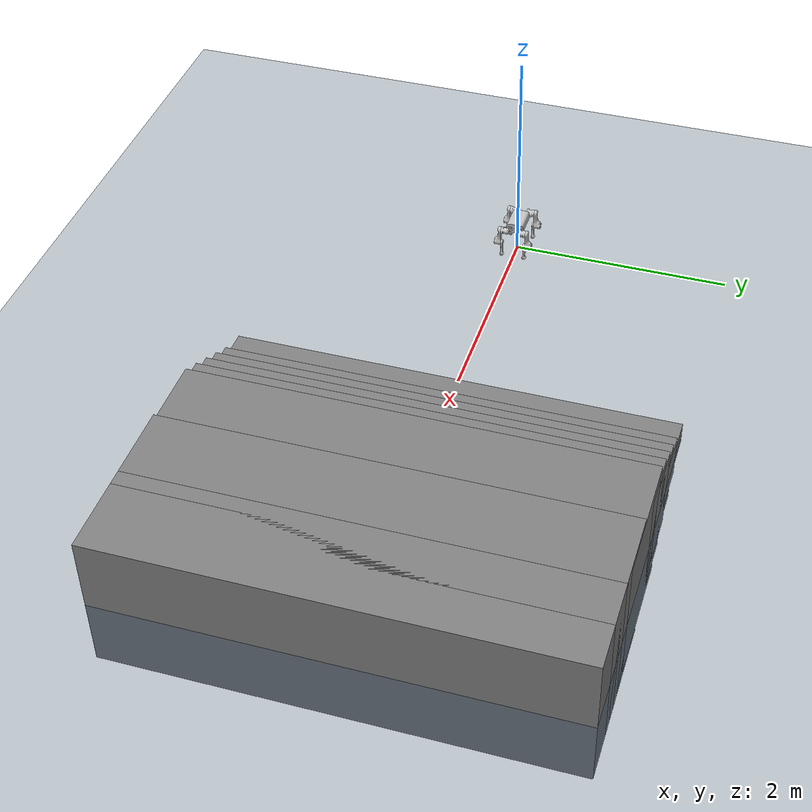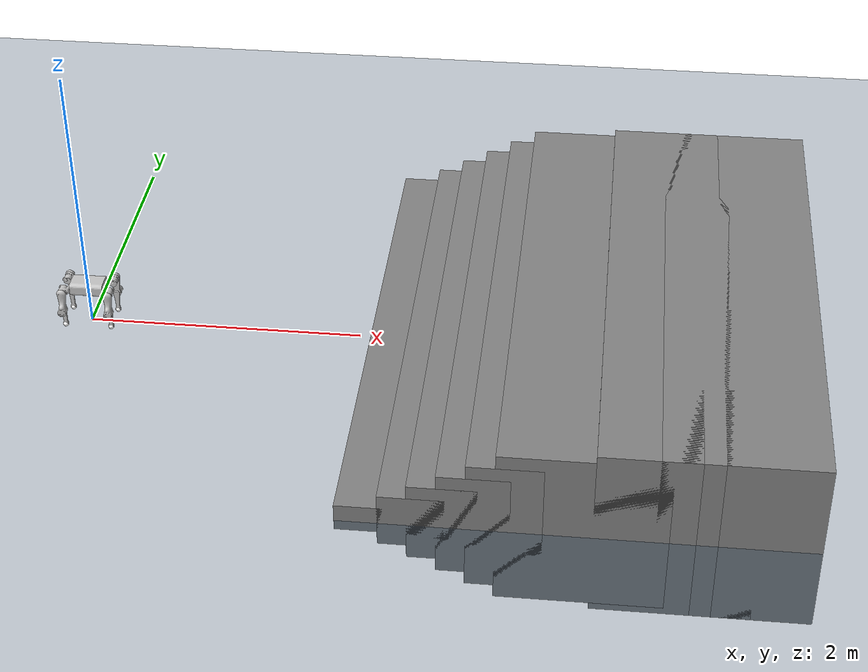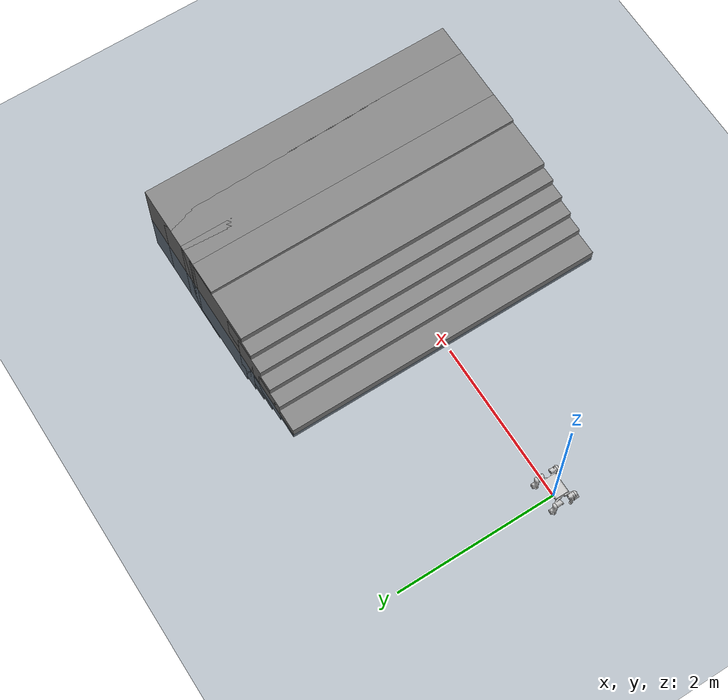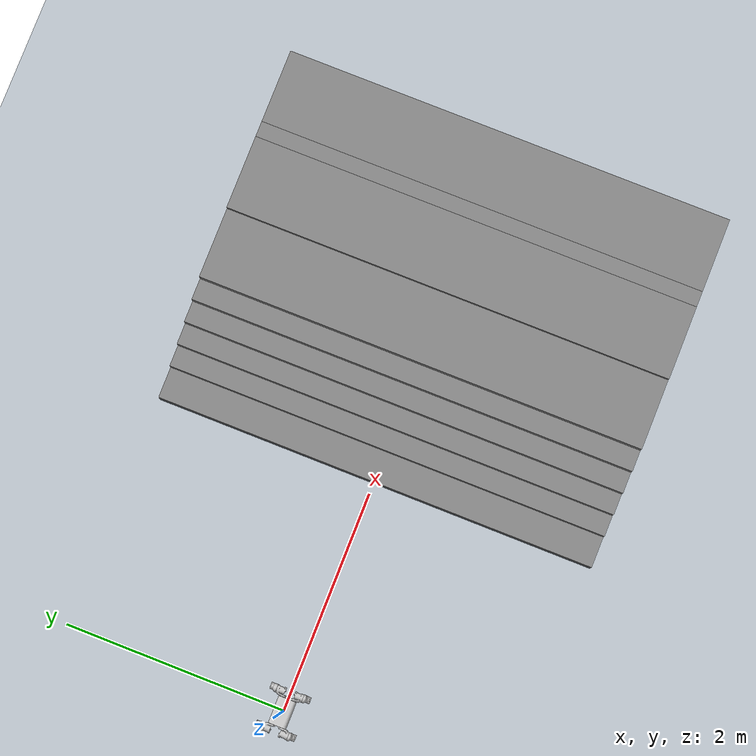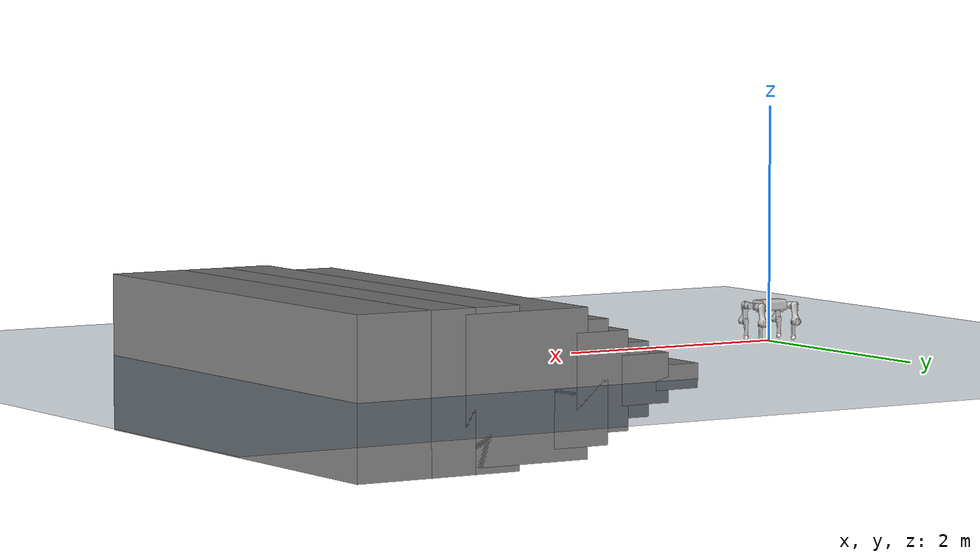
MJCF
<mujoco model="yun1 scene">
  <include file="yun1.xml"/>

  <statistic center="1.0 0.7 1.0" extent="0.8"/>

  <visual>
    <headlight diffuse="0.6 0.6 0.6" ambient="0.1 0.1 0.1" specular="0.9 0.9 0.9"/>
    <rgba haze="0.15 0.25 0.35 1"/>
    <global azimuth="-140" elevation="-20"/>
  </visual>

  <asset>
    <texture type="skybox" builtin="flat" rgb1="0 0 0" rgb2="0 0 0" width="512" height="3072"/>
    <texture type="2d" name="groundplane" builtin="checker" mark="edge" rgb1="0.2 0.3 0.4" rgb2="0.1 0.2 0.3" markrgb="0.8 0.8 0.8" width="300" height="300"/>
    <material name="groundplane" texture="groundplane" texuniform="true" texrepeat="5 5" reflectance="0.2"/>
  </asset>

  <worldbody>
    <light pos="1 0 3.5" dir="0 0 -1" directional="true"/>
    <geom name="floor" size="0 0 0.05" type="plane" material="groundplane"/>

    <geom pos="2.3 0 0.02" type="box"  size="0.2 2 0.10" quat="1.0 0 0 0"/>
    <geom pos="2.6 0 0.02" type="box"  size="0.22 2 0.2" quat="1.0 0 0 0"/>
    <geom pos="2.8 0 0.02" type="box"  size="0.23 2 0.3" quat="1.0 0 0 0"/>
    <geom pos="3 0 0.02" type="box"  size="0.24 2 0.4" quat="1.0 0 0 0"/>
    <geom pos="3.2 0 0.02" type="box"  size="0.25 2 0.5" quat="1.0 0 0 0"/>
    <geom pos="3.7 0 0.02" type="box"  size="0.56 2 0.6" quat="1.0 0 0 0"/>
    <geom pos="4.1 0 0.02" type="box"  size="0.33 2 0.65" quat="1.0 0 0 0"/>
    <geom pos="4.5 0 0.02" type="box"  size="0.33 2 0.65" quat="1.0 0 0 0"/>
    <geom pos="4.9 0 0.02" type="box"  size="0.33 2 0.65" quat="1.0 0 0 0"/>

  </worldbody>
</mujoco>

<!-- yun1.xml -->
<mujoco model="yun1">
  <compiler angle="radian" meshdir="" autolimits="true" />

  <option cone="elliptic" impratio="100" />

  <default>
    <default class="yun1">
      <geom friction="1.0 1.0" margin="0.001" solref = "0.005 1" condim="3"/>
      <joint axis="0 1 0" damping="0.1" armature="0.01" frictionloss="0.2"/>
      <motor ctrlrange="-14 14"/>
      <default class="abduction">
        <joint axis="1 0 0" range="-0.8727 0.8727"/>
      </default>
      <default class="hip">
        <default class="front_hip">
          <joint range="-2.7925 2.7925"/>
        </default>
        <default class="back_hip">
          <joint range="-2.7925 2.7925"/>
        </default>
      </default>
      <default class="knee">
        <joint range="-2.7053 2.7053"/>
      </default>
      <default class="visual">
        <geom type="mesh" contype="0" conaffinity="0" group="2"/>
      </default>
      <default class="collision">
        <geom group="3"/>
        <default class="foot">
          <geom size="0.001" pos="0 0 -0.135" priority="1" condim="6"
            friction="1.0 0.02 0.01"/>
        </default>
      </default>
    </default>
  </default>

  <asset>
    <mesh name="base_link" file="./meshes/base_link.STL" />
    <mesh name="fr_hip_Link" file="./meshes/fr_hip_Link.STL" />
    <mesh name="fr_thigh_Link" file="./meshes/fr_thigh_Link.STL" />
    <mesh name="fr_calf_Link" file="./meshes/fr_calf_Link.STL" />
    <mesh name="fl_hip_Link" file="./meshes/fl_hip_Link.STL" />
    <mesh name="fl_thigh_Link" file="./meshes/fl_thigh_Link.STL" />
    <mesh name="fl_calf_Link" file="./meshes/fl_calf_Link.STL" />
    <mesh name="rr_hip_Link" file="./meshes/rr_hip_Link.STL" />
    <mesh name="rr_thigh_Link" file="./meshes/rr_thigh_Link.STL" />
    <mesh name="rr_calf_Link" file="./meshes/rr_calf_Link.STL" />
    <mesh name="rl_hip_Link" file="./meshes/rl_hip_Link.STL" />
    <mesh name="rl_thigh_Link" file="./meshes/rl_thigh_Link.STL" />
    <mesh name="rl_calf_Link" file="./meshes/rl_calf_Link.STL" />
  </asset>

  <worldbody>
    <body name="base_link" pos="0 0 0.3" childclass="yun1">
      <inertial pos="0.00383944 0.00032322 0.00132292" quat="1 0 0 0"
        mass="2.87129405"
        diaginertia="0.00758086 0.01707296 0.02157473" />
      <freejoint />
      <geom type="mesh" mesh="base_link" rgba="0.752941176470588 0.752941176470588 0.752941176470588 1"/>
      <geom type="mesh" mesh="base_link" class="collision"/>
      <site name="imu" pos="0.0 0 -0.0" />
      <body name="fl_hip_Link" pos="0.1125 0.045 0">
        <inertial pos="0.05181106 0.02890945 -0.00025930" quat="1 0 0 0"
          mass="0.40036239"
          diaginertia="0.00027388 0.00028655 0.00034645" />
        <joint name="fl_hip_Joint" class="abduction" />
        <geom type="mesh" mesh="fl_hip_Link" rgba="0.752941176470588 0.752941176470588 0.752941176470588 1"/>
        <geom type="mesh" mesh="fl_hip_Link" class="collision"/>
        <body name="fl_thigh_Link" pos="0.0575 0.0525 0">
          <inertial pos="-0.00025469 0.04391819 -0.10445464" quat="1 0 0 0"
            mass="0.47156059"
            diaginertia="0.00157037 0.00153438 0.00030139" />
          <joint name="fl_thigh_Joint" class="front_hip" />
          <geom type="mesh" mesh="fl_thigh_Link" rgba="0.752941176470588 0.752941176470588 0.752941176470588 1"/>
          <geom type="mesh" mesh="fl_thigh_Link" class="collision"/>
          <body name="fl_calf_Link" pos="0 0.026 -0.135">
            <inertial pos="-2.5e-06 -0.01533174 -0.06951052"
              quat="1 0 0 0"
              mass="0.08358392" diaginertia="0.00024129 0.00024771 1.351e-05" />
            <joint name="fl_calf_Joint" class="knee" />
            <geom type="mesh" mesh="fl_calf_Link" rgba="0.752941176470588 0.752941176470588 0.752941176470588 1"/>
            <geom type="mesh" mesh="fl_calf_Link" class="collision"/>
            <geom type="sphere" size="0.02075" rgba="1 1 1 1" pos="0 -0.015 -0.14" />
            <geom name="fl_foot_Link" class="foot" pos="0 -0.015 -0.14" />
            <body name="fl_foot_Link" pos="0 -0.015 -0.14">
              <inertial pos="0 0 0" quat="1 0 0 0" mass="0.04" diaginertia="9.6e-06 9.6e-06 9.6e-06" />
              <geom type="sphere" size="0.02075" pos="-0.002 0 0" class="foot" />
            </body>
          </body>
        </body>
      </body>

      <body name="fr_hip_Link" pos="0.1125 -0.045 0">
        <inertial pos="0.05151195 -0.02890203 0.00025989" quat="1 0 0 0"
          mass="0.40021841"
          diaginertia="0.00027389 0.00028504 0.00034478" />
        <joint name="fr_hip_Joint" class="abduction" />
        <geom type="mesh" mesh="fr_hip_Link" rgba="0.752941176470588 0.752941176470588 0.752941176470588 1"/>
        <geom type="mesh" mesh="fr_hip_Link" class="collision"/>
        <body name="fr_thigh_Link" pos="0.0575 -0.0525 0">
          <inertial pos="0.00025469 -0.04391819 -0.10445464" quat="1 0 0 0"
            mass="0.47156059"
            diaginertia="0.00157037 0.00153438 0.00030139" />
          <joint name="fr_thigh_Joint" class="front_hip" />
          <geom type="mesh" mesh="fr_thigh_Link" rgba="0.752941176470588 0.752941176470588 0.752941176470588 1"/>
          <geom type="mesh" mesh="fr_thigh_Link" class="collision"/>
          <body name="fr_calf_Link" pos="0 -0.026 -0.135">
            <inertial pos="2.5e-06 0.01533174 -0.06951052"
              quat="1 0 0 0"
              mass="0.08358392" diaginertia="0.00024129 0.00024771 1.351e-05" />
            <joint name="fr_calf_Joint" class="knee" />
            <geom type="mesh" mesh="fr_calf_Link" rgba="0.752941176470588 0.752941176470588 0.752941176470588 1"/>
            <geom type="mesh" mesh="fr_calf_Link" class="collision"/>
            <geom type="sphere" size="0.02075" rgba="1 1 1 1" pos="0 0.015 -0.14" />
            <geom name="fr_foot_Link" class="foot" pos="0 0.015 -0.14" />
            <body name="fr_foot_Link" pos="0 0.015 -0.14">
              <inertial pos="0 0 0" quat="1 0 0 0" mass="0.04" diaginertia="9.6e-06 9.6e-06 9.6e-06" />
              <geom type="sphere" size="0.02075" pos="-0.002 0 0" class="foot" />
            </body>
          </body>
        </body>
      </body>

      <body name="rl_hip_Link" pos="-0.1125 0.045 0">
        <inertial pos="-0.05151195 0.02890203 0.00025989" quat="1 0 0 0"
          mass="0.40021841"
          diaginertia="0.00027389 0.00028504 0.00034478" />
        <joint name="rl_hip_Joint" class="abduction" />
        <geom type="mesh" mesh="rl_hip_Link" rgba="0.752941176470588 0.752941176470588 0.752941176470588 1"/>
        <geom type="mesh" mesh="rl_hip_Link" class="collision"/>
        <body name="rl_thigh_Link" pos="-0.0575 0.0525 0">
          <inertial pos="-0.00025469 0.04391819 -0.10445464" quat="1 0 0 0"
            mass="0.47156059"
            diaginertia="0.00157037 0.00153438 0.00030139" />
          <joint name="rl_thigh_Joint" class="back_hip" />
          <geom type="mesh" mesh="rl_thigh_Link" rgba="0.752941176470588 0.752941176470588 0.752941176470588 1"/>
          <geom type="mesh" mesh="rl_thigh_Link" class="collision"/>
          <body name="rl_calf_Link" pos="0 0.026 -0.135">
            <inertial pos="-2.5e-06 -0.01533174 -0.06951052"
              quat="1 0 0 0"
              mass="0.08358392" diaginertia="0.00024129 0.00024771 1.351e-05" />
            <joint name="rl_calf_Joint" class="knee" />
            <geom type="mesh" mesh="rl_calf_Link" rgba="0.752941176470588 0.752941176470588 0.752941176470588 1"/>
            <geom type="mesh" mesh="rl_calf_Link" class="collision"/>
            <geom type="sphere" size="0.02075" rgba="1 1 1 1" pos="0 -0.015 -0.14" />
            <geom name="rl_foot_Link" class="foot" pos="0 -0.015 -0.14" />
            <body name="rl_foot_Link" pos="0 -0.015 -0.14">
              <inertial pos="0 0 0" quat="1 0 0 0" mass="0.04" diaginertia="9.6e-06 9.6e-06 9.6e-06" />
              <geom type="sphere" size="0.02075" pos="-0.002 0 0" class="foot" />
            </body>
          </body>
        </body>
      </body>

      <body name="rr_hip_Link" pos="-0.1125 -0.045 0">
        <inertial pos="-0.05181106 -0.02890945 -0.0002593" quat="1 0 0 0"
          mass="0.40036239"
          diaginertia="0.00027388 0.00028655 0.00034645" />
        <joint name="rr_hip_Joint" class="abduction" />
        <geom type="mesh" mesh="rr_hip_Link" rgba="0.752941176470588 0.752941176470588 0.752941176470588 1"/>
        <geom type="mesh" mesh="rr_hip_Link" class="collision"/>
        <body name="rr_thigh_Link" pos="-0.0575 -0.0525 0">
          <inertial pos="0.00025469 -0.04391819 -0.10445464" quat="1 0 0 0"
            mass="0.47156059"
            diaginertia="0.00157037 0.00153438 0.00030139" />
          <joint name="rr_thigh_Joint" class="back_hip" />
          <geom type="mesh" mesh="rr_thigh_Link" rgba="0.752941176470588 0.752941176470588 0.752941176470588 1"/>
          <geom type="mesh" mesh="rr_thigh_Link" class="collision"/>
          <body name="rr_calf_Link" pos="0 -0.026 -0.135">
            <inertial pos="2.5e-06 0.01533174 -0.06951052"
              quat="1 0 0 0"
              mass="0.08358392" diaginertia="0.00024129 0.00024771 1.351e-05" />
            <joint name="rr_calf_Joint" class="knee" />
            <geom type="mesh" mesh="rr_calf_Link" rgba="0.752941176470588 0.752941176470588 0.752941176470588 1"/>
            <geom type="mesh" mesh="rr_calf_Link" class="collision"/>
            <geom type="sphere" size="0.02075" rgba="1 1 1 1" pos="0 0.015 -0.14" />
            <geom name="rr_foot_Link" class="foot" pos="0 0.015 -0.14" />
            <body name="rr_foot_Link" pos="0 0.015 -0.14">
              <inertial pos="0 0 0" quat="1 0 0 0" mass="0.04" diaginertia="9.6e-06 9.6e-06 9.6e-06" />
              <geom type="sphere" size="0.02075" pos="-0.002 0 0" class="foot" />
            </body>
          </body>
        </body>
      </body>
    </body>
  </worldbody>

  <actuator>
    <motor class="abduction" name="fl_hip_Joint" joint="fl_hip_Joint" />
    <motor class="hip" name="fl_thigh_Joint" joint="fl_thigh_Joint" />
    <motor class="knee" name="fl_calf_Joint" joint="fl_calf_Joint" />

    <motor class="abduction" name="fr_hip_Joint" joint="fr_hip_Joint" />
    <motor class="hip" name="fr_thigh_Joint" joint="fr_thigh_Joint" />
    <motor class="knee" name="fr_calf_Joint" joint="fr_calf_Joint" />

    <motor class="abduction" name="rl_hip_Joint" joint="rl_hip_Joint" />
    <motor class="hip" name="rl_thigh_Joint" joint="rl_thigh_Joint" />
    <motor class="knee" name="rl_calf_Joint" joint="rl_calf_Joint" />

    <motor class="abduction" name="rr_hip_Joint" joint="rr_hip_Joint" />
    <motor class="hip" name="rr_thigh_Joint" joint="rr_thigh_Joint" />
    <motor class="knee" name="rr_calf_Joint" joint="rr_calf_Joint" />
  </actuator>

  <sensor>
    <jointpos name="fl_hip_pos" joint="fl_hip_Joint" />
    <jointpos name="fl_thigh_pos" joint="fl_thigh_Joint" />
    <jointpos name="fl_calf_pos" joint="fl_calf_Joint" />

    <jointpos name="fr_hip_pos" joint="fr_hip_Joint" />
    <jointpos name="fr_thigh_pos" joint="fr_thigh_Joint" />
    <jointpos name="fr_calf_pos" joint="fr_calf_Joint" />

    <jointpos name="rl_hip_pos" joint="rl_hip_Joint" />
    <jointpos name="rl_thigh_pos" joint="rl_thigh_Joint" />
    <jointpos name="rl_calf_pos" joint="rl_calf_Joint" />

    <jointpos name="rr_hip_pos" joint="rr_hip_Joint" />
    <jointpos name="rr_thigh_pos" joint="rr_thigh_Joint" />
    <jointpos name="rr_calf_pos" joint="rr_calf_Joint" />

    <jointvel name="fl_hip_vel" joint="fl_hip_Joint" />
    <jointvel name="fl_thigh_vel" joint="fl_thigh_Joint" />
    <jointvel name="fl_calf_vel" joint="fl_calf_Joint" />

    <jointvel name="fr_hip_vel" joint="fr_hip_Joint" />
    <jointvel name="fr_thigh_vel" joint="fr_thigh_Joint" />
    <jointvel name="fr_calf_vel" joint="fr_calf_Joint" />

    <jointvel name="rl_hip_vel" joint="rl_hip_Joint" />
    <jointvel name="rl_thigh_vel" joint="rl_thigh_Joint" />
    <jointvel name="rl_calf_vel" joint="rl_calf_Joint" />

    <jointvel name="rr_hip_vel" joint="rr_hip_Joint" />
    <jointvel name="rr_thigh_vel" joint="rr_thigh_Joint" />
    <jointvel name="rr_calf_vel" joint="rr_calf_Joint" />

    <jointactuatorfrc name="fl_hip_torque" joint="fl_hip_Joint" noise="0.01" />
    <jointactuatorfrc name="fl_thigh_torque" joint="fl_thigh_Joint" noise="0.01" />
    <jointactuatorfrc name="fl_calf_torque" joint="fl_calf_Joint" noise="0.01" />

    <jointactuatorfrc name="fr_hip_torque" joint="fr_hip_Joint" noise="0.01" />
    <jointactuatorfrc name="fr_thigh_torque" joint="fr_thigh_Joint" noise="0.01" />
    <jointactuatorfrc name="fr_calf_torque" joint="fr_calf_Joint" noise="0.01" />

    <jointactuatorfrc name="rl_hip_torque" joint="rl_hip_Joint" noise="0.01" />
    <jointactuatorfrc name="rl_thigh_torque" joint="rl_thigh_Joint" noise="0.01" />
    <jointactuatorfrc name="rl_calf_torque" joint="rl_calf_Joint" noise="0.01" />

    <jointactuatorfrc name="rr_hip_torque" joint="rr_hip_Joint" noise="0.01" />
    <jointactuatorfrc name="rr_thigh_torque" joint="rr_thigh_Joint" noise="0.01" />
    <jointactuatorfrc name="rr_calf_torque" joint="rr_calf_Joint" noise="0.01" />

    <framequat name="imu_quat" objtype="site" objname="imu" />
    <gyro name="imu_gyro" site="imu" />
    <accelerometer name="imu_acc" site="imu" />

    <framepos name="frame_pos" objtype="site" objname="imu" />
    <framelinvel name="frame_vel" objtype="site" objname="imu" />
  </sensor>

  <keyframe>
    <key name="home" qpos="0 0 0.3 1 0 0 0 0 0.8 -1.6 0 0.8 -1.6 0 0.8 -1.6 0 0.8 -1.6"/>
  </keyframe>
</mujoco>
